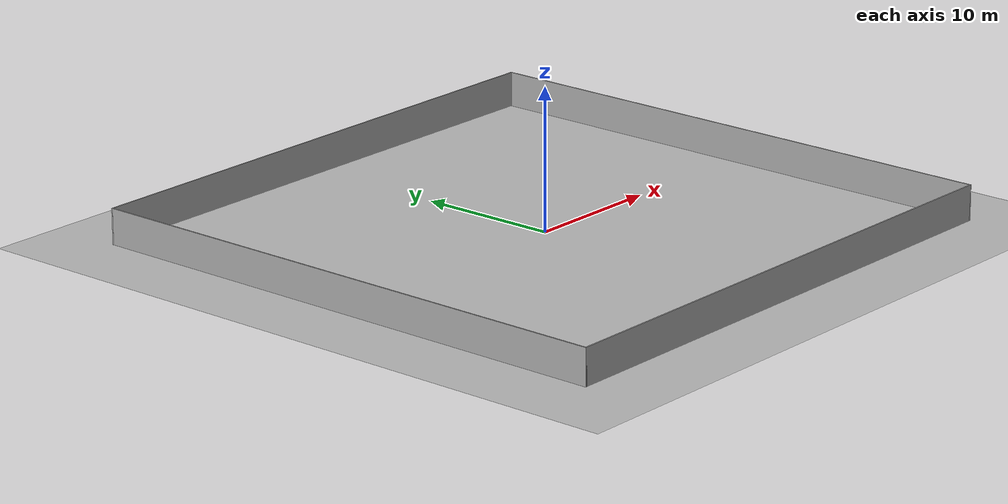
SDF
<sdf version='1.6'>
  <world name='default'>
    <light name='sun' type='directional'>
      <cast_shadows>1</cast_shadows>
      <pose frame=''>0 0 10 0 -0 0</pose>
      <diffuse>0.8 0.8 0.8 1</diffuse>
      <specular>0.2 0.2 0.2 1</specular>
      <attenuation>
        <range>1000</range>
        <constant>0.9</constant>
        <linear>0.01</linear>
        <quadratic>0.001</quadratic>
      </attenuation>
      <direction>-0.5 0.1 -0.9</direction>
    </light>
    <model name='ground_plane'>
      <static>1</static>
      <link name='link'>
        <collision name='collision'>
          <geometry>
            <plane>
              <normal>0 0 1</normal>
              <size>40 40</size>
            </plane>
          </geometry>
          <surface>
            <contact>
              <collide_bitmask>65535</collide_bitmask>
              <ode/>
            </contact>
            <friction>
              <ode>
                <mu>100</mu>
                <mu2>50</mu2>
              </ode>
              <torsional>
                <ode/>
              </torsional>
            </friction>
            <bounce/>
          </surface>
          <max_contacts>15</max_contacts>
        </collision>
        <visual name='visual'>
          <cast_shadows>0</cast_shadows>
          <geometry>
            <plane>
              <normal>0 0 1</normal>
              <size>40 40</size>
            </plane>
          </geometry>
          <material>
            <script>
              <uri>file://media/materials/scripts/gazebo.material</uri>
              <name>Gazebo/Grey</name>
            </script>
          </material>
        </visual>
        <self_collide>0</self_collide>
        <enable_wind>0</enable_wind>
        <kinematic>0</kinematic>
      </link>
    </model>
     <model name='outsidewall.sdf'>
    <pose frame=''>0 0 0 0 -0 0</pose>
    <link name='Wall_3'>
      <collision name='Wall_3_Collision'>
        <geometry>
          <box>
            <size>40 0.10 2.5</size>
          </box>
        </geometry>
        <pose frame=''>0 0 1.25 0 -0 0</pose>
      </collision>
      <visual name='Wall_3_Visual'>
        <pose frame=''>0 0 1.25 0 -0 0</pose>
        <geometry>
          <box>
            <size>40 0.10 2.5</size>
          </box>
        </geometry>
        <material>
          <script>
            <uri>file://media/materials/scripts/gazebo.material</uri>
            <name>Gazebo/Grey</name>
          </script>
          <ambient>1 1 1 1</ambient>
        </material>
        <meta>
          <layer>0</layer>
        </meta>
      </visual>
      <pose frame=''>0 19.95 0 0 -0 0</pose>
    </link>
    <link name='Wall_5'>
      <collision name='Wall_5_Collision'>
        <geometry>
          <box>
            <size>40 0.10 2.5</size>
          </box>
        </geometry>
        <pose frame=''>0 0 1.25 0 -0 0</pose>
      </collision>
      <visual name='Wall_5_Visual'>
        <pose frame=''>0 0 1.25 0 -0 0</pose>
        <geometry>
          <box>
            <size>40 0.10 2.5</size>
          </box>
        </geometry>
        <material>
          <script>
            <uri>file://media/materials/scripts/gazebo.material</uri>
            <name>Gazebo/Grey</name>
          </script>
          <ambient>1 1 1 1</ambient>
        </material>
        <meta>
          <layer>0</layer>
        </meta>
      </visual>
      <pose frame=''>-19.95 0 0 0 -0 1.5707</pose>
    </link>
    <link name='Wall_6'>
      <collision name='Wall_6_Collision'>
        <geometry>
          <box>
            <size>40 0.10 2.5</size>
          </box>
        </geometry>
        <pose frame=''>0 0 1.25 0 -0 0</pose>
      </collision>
      <visual name='Wall_6_Visual'>
        <pose frame=''>0 0 1.25 0 -0 0</pose>
        <geometry>
          <box>
            <size>40 0.10 2.5</size>
          </box>
        </geometry>
        <material>
          <script>
            <uri>file://media/materials/scripts/gazebo.material</uri>
            <name>Gazebo/Grey</name>
          </script>
          <ambient>1 1 1 1</ambient>
        </material>
        <meta>
          <layer>0</layer>
        </meta>
      </visual>
      <pose frame=''>0 -19.95 0 0 -0 0</pose>
    </link>
    <link name='Wall_7'>
      <collision name='Wall_7_Collision'>
        <geometry>
          <box>
            <size>40 0.10 2.5</size>
          </box>
        </geometry>
        <pose frame=''>0 0 1.25 0 -0 0</pose>
      </collision>
      <visual name='Wall_7_Visual'>
        <pose frame=''>0 0 1.25 0 -0 0</pose>
        <geometry>
          <box>
            <size>40 0.10 2.5</size>
          </box>
        </geometry>
        <material>
          <script>
            <uri>file://media/materials/scripts/gazebo.material</uri>
            <name>Gazebo/Grey</name>
          </script>
          <ambient>1 1 1 1</ambient>
        </material>
        <meta>
          <layer>0</layer>
        </meta>
      </visual>
      <pose frame=''>19.95 0 0 0 -0 1.5707</pose>
    </link>
    <static>1</static>
  </model>
    <gravity>0 0 -9.8</gravity>
    <magnetic_field>6e-06 2.3e-05 -4.2e-05</magnetic_field>
    <atmosphere type='adiabatic'/>
    <physics name='default_physics' default='0' type='ode'>
      <max_step_size>0.001</max_step_size>
      <real_time_factor>1</real_time_factor>
      <real_time_update_rate>1000</real_time_update_rate>
    </physics>
    <scene>
      <ambient>0.4 0.4 0.4 1</ambient>
      <background>0.7 0.7 0.7 1</background>
      <shadows>1</shadows>
    </scene>
    <audio>
      <device>default</device>
    </audio>
    <wind/>
    <spherical_coordinates>
      <surface_model>EARTH_WGS84</surface_model>
      <latitude_deg>0</latitude_deg>
      <longitude_deg>0</longitude_deg>
      <elevation>0</elevation>
      <heading_deg>0</heading_deg>
    </spherical_coordinates>
    <gui fullscreen='0'>
      <camera name='user_camera'>
        <pose frame=''>17.6964 -3.39131 8.77294 0 0.343643 2.9522</pose>
        <view_controller>orbit</view_controller>
        <projection_type>perspective</projection_type>
      </camera>
    </gui>

  </world>
</sdf>
